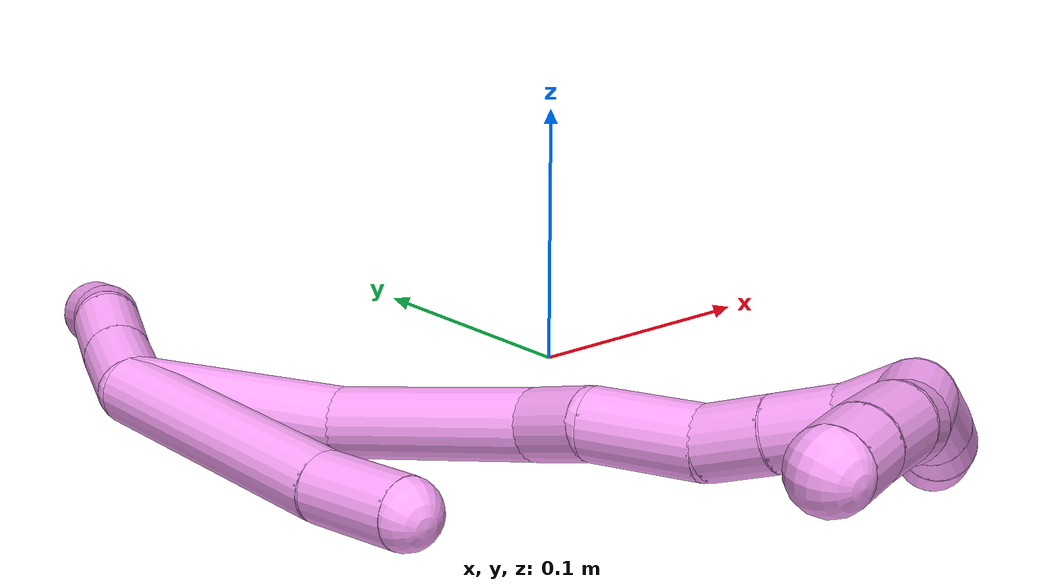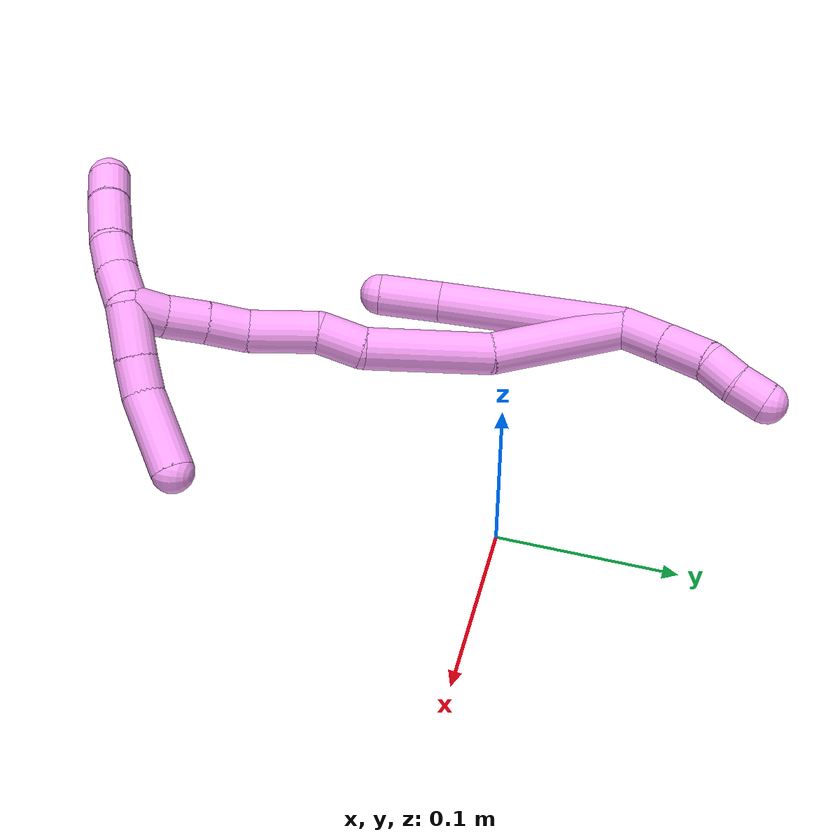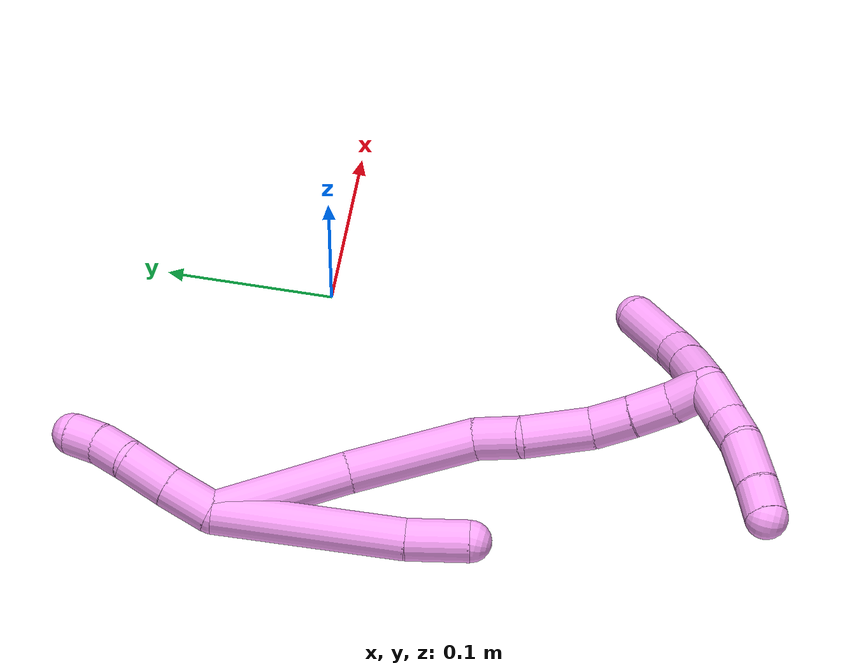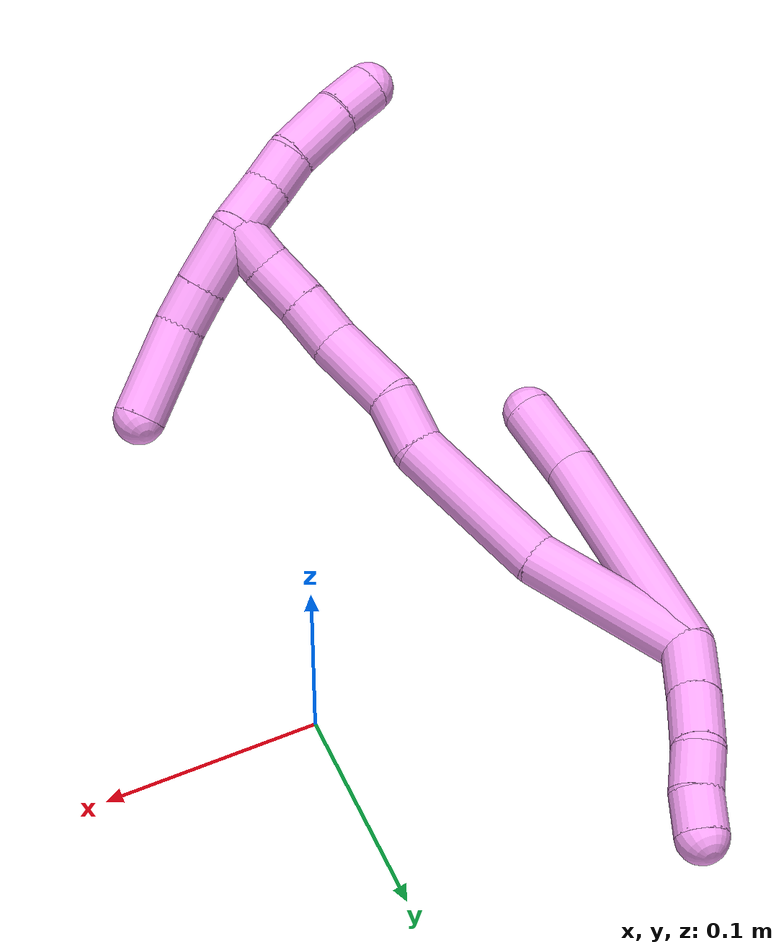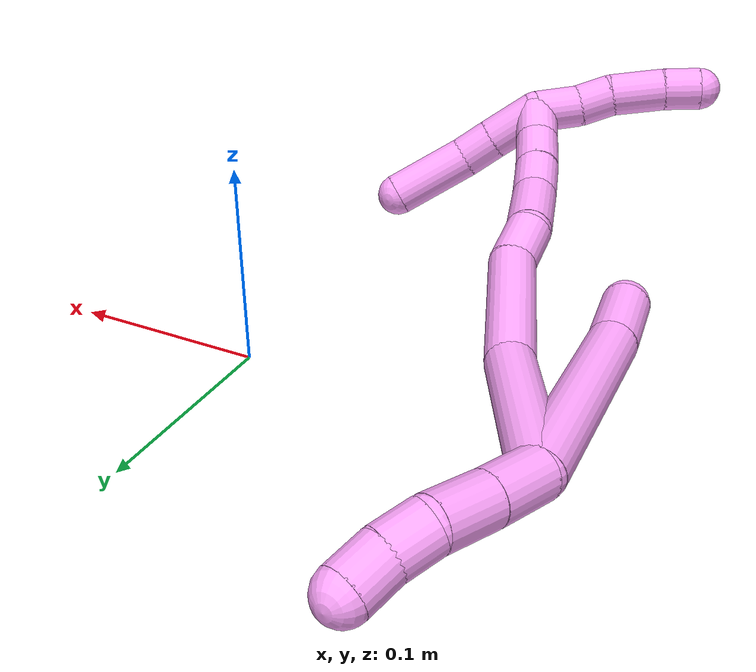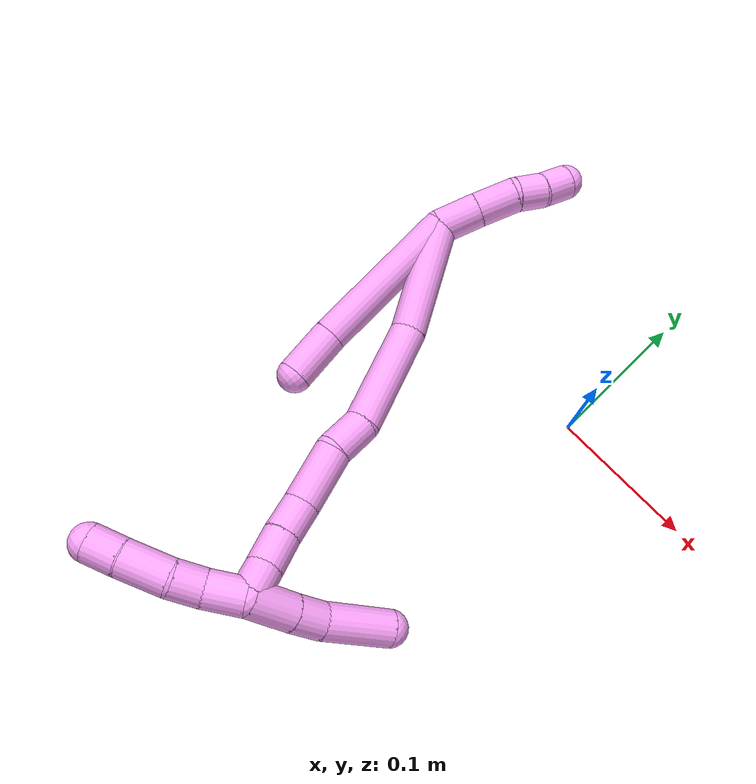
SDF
<sdf version="1.7">
 <world name="default">
  <model name="4">
   <static>0</static>
   <link name="4">
    <collision name="collision-cylinder-e_1_2_8">
     <pose>-0.006986 -0.000376 0.055879 0.006723 -0.124379 -0.000419</pose>
     <geometry><cylinder><radius>0.0125</radius><length>0.11263</length></cylinder></geometry>
     <surface>
      <friction><ode><mu>1.16</mu><mu2>1.16</mu2><slip1>0</slip1><slip2>0</slip2></ode></friction>
      <contact><ode><kp>1e+06</kp><kd>1</kd><max_vel>0</max_vel><min_depth>0.001</min_depth></ode></contact>
     </surface>
    </collision>
    <visual name="visual-cylinder-e_1_2_8">
     <pose>-0.006986 -0.000376 0.055879 0.006723 -0.124379 -0.000419</pose>
     <geometry><cylinder><radius>0.0125</radius><length>0.11263</length></cylinder></geometry>
     <material><ambient>1 0.65098 0.996078 1</ambient></material>
    </visual>
    <collision name="collision-cylinder-e_2_8_6">
     <pose>-0.018209 -0.001542 0.129939 0.043485 -0.22869 -0.004995</pose>
     <geometry><cylinder><radius>0.0125</radius><length>0.03737</length></cylinder></geometry>
     <surface>
      <friction><ode><mu>1.16</mu><mu2>1.16</mu2><slip1>0</slip1><slip2>0</slip2></ode></friction>
      <contact><ode><kp>1e+06</kp><kd>1</kd><max_vel>0</max_vel><min_depth>0.001</min_depth></ode></contact>
     </surface>
    </collision>
    <visual name="visual-cylinder-e_2_8_6">
     <pose>-0.018209 -0.001542 0.129939 0.043485 -0.22869 -0.004995</pose>
     <geometry><cylinder><radius>0.0125</radius><length>0.03737</length></cylinder></geometry>
     <material><ambient>1 0.65098 0.996078 1</ambient></material>
    </visual>
    <collision name="collision-cylinder-e_1_2_9">
     <pose>-0.004136 0.000894 -0.014383 -3.07951 -0.279508 2.70709</pose>
     <geometry><cylinder><radius>0.0125</radius><length>0.029986</length></cylinder></geometry>
     <surface>
      <friction><ode><mu>1.16</mu><mu2>1.16</mu2><slip1>0</slip1><slip2>0</slip2></ode></friction>
      <contact><ode><kp>1e+06</kp><kd>1</kd><max_vel>0</max_vel><min_depth>0.001</min_depth></ode></contact>
     </surface>
    </collision>
    <visual name="visual-cylinder-e_1_2_9">
     <pose>-0.004136 0.000894 -0.014383 -3.07951 -0.279508 2.70709</pose>
     <geometry><cylinder><radius>0.0125</radius><length>0.029986</length></cylinder></geometry>
     <material><ambient>1 0.65098 0.996078 1</ambient></material>
    </visual>
    <collision name="collision-cylinder-e_2_9_10">
     <pose>-0.012909 0.002575 -0.042544 -3.08455 -0.324148 2.79609</pose>
     <geometry><cylinder><radius>0.0125</radius><length>0.029116</length></cylinder></geometry>
     <surface>
      <friction><ode><mu>1.16</mu><mu2>1.16</mu2><slip1>0</slip1><slip2>0</slip2></ode></friction>
      <contact><ode><kp>1e+06</kp><kd>1</kd><max_vel>0</max_vel><min_depth>0.001</min_depth></ode></contact>
     </surface>
    </collision>
    <visual name="visual-cylinder-e_2_9_10">
     <pose>-0.012909 0.002575 -0.042544 -3.08455 -0.324148 2.79609</pose>
     <geometry><cylinder><radius>0.0125</radius><length>0.029116</length></cylinder></geometry>
     <material><ambient>1 0.65098 0.996078 1</ambient></material>
    </visual>
    <collision name="collision-cylinder-e_3_10_11">
     <pose>-0.02062 0.007219 -0.065371 -2.73863 -0.302853 1.28328</pose>
     <geometry><cylinder><radius>0.0125</radius><length>0.020612</length></cylinder></geometry>
     <surface>
      <friction><ode><mu>1.16</mu><mu2>1.16</mu2><slip1>0</slip1><slip2>0</slip2></ode></friction>
      <contact><ode><kp>1e+06</kp><kd>1</kd><max_vel>0</max_vel><min_depth>0.001</min_depth></ode></contact>
     </surface>
    </collision>
    <visual name="visual-cylinder-e_3_10_11">
     <pose>-0.02062 0.007219 -0.065371 -2.73863 -0.302853 1.28328</pose>
     <geometry><cylinder><radius>0.0125</radius><length>0.020612</length></cylinder></geometry>
     <material><ambient>1 0.65098 0.996078 1</ambient></material>
    </visual>
    <collision name="collision-cylinder-e_4_11_5">
     <pose>-0.024955 0.014562 -0.083862 -2.78803 -0.124688 0.672329</pose>
     <geometry><cylinder><radius>0.0125</radius><length>0.020286</length></cylinder></geometry>
     <surface>
      <friction><ode><mu>1.16</mu><mu2>1.16</mu2><slip1>0</slip1><slip2>0</slip2></ode></friction>
      <contact><ode><kp>1e+06</kp><kd>1</kd><max_vel>0</max_vel><min_depth>0.001</min_depth></ode></contact>
     </surface>
    </collision>
    <visual name="visual-cylinder-e_4_11_5">
     <pose>-0.024955 0.014562 -0.083862 -2.78803 -0.124688 0.672329</pose>
     <geometry><cylinder><radius>0.0125</radius><length>0.020286</length></cylinder></geometry>
     <material><ambient>1 0.65098 0.996078 1</ambient></material>
    </visual>
    <collision name="collision-cylinder-e_1_2_12">
     <pose>-0.022615 0.005812 0.034248 -0.16811 -0.577095 0.050008</pose>
     <geometry><cylinder><radius>0.0125</radius><length>0.082901</length></cylinder></geometry>
     <surface>
      <friction><ode><mu>1.16</mu><mu2>1.16</mu2><slip1>0</slip1><slip2>0</slip2></ode></friction>
      <contact><ode><kp>1e+06</kp><kd>1</kd><max_vel>0</max_vel><min_depth>0.001</min_depth></ode></contact>
     </surface>
    </collision>
    <visual name="visual-cylinder-e_1_2_12">
     <pose>-0.022615 0.005812 0.034248 -0.16811 -0.577095 0.050008</pose>
     <geometry><cylinder><radius>0.0125</radius><length>0.082901</length></cylinder></geometry>
     <material><ambient>1 0.65098 0.996078 1</ambient></material>
    </visual>
    <collision name="collision-cylinder-e_2_12_13">
     <pose>-0.063898 0.008515 0.101851 0.09296 -0.508383 -0.024168</pose>
     <geometry><cylinder><radius>0.0125</radius><length>0.076699</length></cylinder></geometry>
     <surface>
      <friction><ode><mu>1.16</mu><mu2>1.16</mu2><slip1>0</slip1><slip2>0</slip2></ode></friction>
      <contact><ode><kp>1e+06</kp><kd>1</kd><max_vel>0</max_vel><min_depth>0.001</min_depth></ode></contact>
     </surface>
    </collision>
    <visual name="visual-cylinder-e_2_12_13">
     <pose>-0.063898 0.008515 0.101851 0.09296 -0.508383 -0.024168</pose>
     <geometry><cylinder><radius>0.0125</radius><length>0.076699</length></cylinder></geometry>
     <material><ambient>1 0.65098 0.996078 1</ambient></material>
    </visual>
    <collision name="collision-cylinder-e_3_13_14">
     <pose>-0.085733 0.00143 0.148 0.301248 -0.232207 -0.035398</pose>
     <geometry><cylinder><radius>0.0125</radius><length>0.027534</length></cylinder></geometry>
     <surface>
      <friction><ode><mu>1.16</mu><mu2>1.16</mu2><slip1>0</slip1><slip2>0</slip2></ode></friction>
      <contact><ode><kp>1e+06</kp><kd>1</kd><max_vel>0</max_vel><min_depth>0.001</min_depth></ode></contact>
     </surface>
    </collision>
    <visual name="visual-cylinder-e_3_13_14">
     <pose>-0.085733 0.00143 0.148 0.301248 -0.232207 -0.035398</pose>
     <geometry><cylinder><radius>0.0125</radius><length>0.027534</length></cylinder></geometry>
     <material><ambient>1 0.65098 0.996078 1</ambient></material>
    </visual>
    <collision name="collision-cylinder-e_4_14_15">
     <pose>-0.096845 -0.002454 0.179832 -0.004763 -0.395291 0.000954</pose>
     <geometry><cylinder><radius>0.0125</radius><length>0.041257</length></cylinder></geometry>
     <surface>
      <friction><ode><mu>1.16</mu><mu2>1.16</mu2><slip1>0</slip1><slip2>0</slip2></ode></friction>
      <contact><ode><kp>1e+06</kp><kd>1</kd><max_vel>0</max_vel><min_depth>0.001</min_depth></ode></contact>
     </surface>
    </collision>
    <visual name="visual-cylinder-e_4_14_15">
     <pose>-0.096845 -0.002454 0.179832 -0.004763 -0.395291 0.000954</pose>
     <geometry><cylinder><radius>0.0125</radius><length>0.041257</length></cylinder></geometry>
     <material><ambient>1 0.65098 0.996078 1</ambient></material>
    </visual>
    <collision name="collision-cylinder-e_5_15_16">
     <pose>-0.110544 -0.005459 0.209316 0.288077 -0.486019 -0.071884</pose>
     <geometry><cylinder><radius>0.0125</radius><length>0.024646</length></cylinder></geometry>
     <surface>
      <friction><ode><mu>1.16</mu><mu2>1.16</mu2><slip1>0</slip1><slip2>0</slip2></ode></friction>
      <contact><ode><kp>1e+06</kp><kd>1</kd><max_vel>0</max_vel><min_depth>0.001</min_depth></ode></contact>
     </surface>
    </collision>
    <visual name="visual-cylinder-e_5_15_16">
     <pose>-0.110544 -0.005459 0.209316 0.288077 -0.486019 -0.071884</pose>
     <geometry><cylinder><radius>0.0125</radius><length>0.024646</length></cylinder></geometry>
     <material><ambient>1 0.65098 0.996078 1</ambient></material>
    </visual>
    <collision name="collision-cylinder-e_6_16_17">
     <pose>-0.122741 -0.011244 0.230021 0.256358 -0.545803 -0.072115</pose>
     <geometry><cylinder><radius>0.0125</radius><length>0.024815</length></cylinder></geometry>
     <surface>
      <friction><ode><mu>1.16</mu><mu2>1.16</mu2><slip1>0</slip1><slip2>0</slip2></ode></friction>
      <contact><ode><kp>1e+06</kp><kd>1</kd><max_vel>0</max_vel><min_depth>0.001</min_depth></ode></contact>
     </surface>
    </collision>
    <visual name="visual-cylinder-e_6_16_17">
     <pose>-0.122741 -0.011244 0.230021 0.256358 -0.545803 -0.072115</pose>
     <geometry><cylinder><radius>0.0125</radius><length>0.024815</length></cylinder></geometry>
     <material><ambient>1 0.65098 0.996078 1</ambient></material>
    </visual>
    <collision name="collision-cylinder-e_7_17_1">
     <pose>-0.135411 -0.018176 0.248393 0.481839 -0.597372 -0.151008</pose>
     <geometry><cylinder><radius>0.0125</radius><length>0.022148</length></cylinder></geometry>
     <surface>
      <friction><ode><mu>1.16</mu><mu2>1.16</mu2><slip1>0</slip1><slip2>0</slip2></ode></friction>
      <contact><ode><kp>1e+06</kp><kd>1</kd><max_vel>0</max_vel><min_depth>0.001</min_depth></ode></contact>
     </surface>
    </collision>
    <visual name="visual-cylinder-e_7_17_1">
     <pose>-0.135411 -0.018176 0.248393 0.481839 -0.597372 -0.151008</pose>
     <geometry><cylinder><radius>0.0125</radius><length>0.022148</length></cylinder></geometry>
     <material><ambient>1 0.65098 0.996078 1</ambient></material>
    </visual>
    <collision name="collision-cylinder-e_1_1_18">
     <pose>-0.14916 -0.010063 0.250144 -2.04637 -0.496013 0.787142</pose>
     <geometry><cylinder><radius>0.0125</radius><length>0.031604</length></cylinder></geometry>
     <surface>
      <friction><ode><mu>1.16</mu><mu2>1.16</mu2><slip1>0</slip1><slip2>0</slip2></ode></friction>
      <contact><ode><kp>1e+06</kp><kd>1</kd><max_vel>0</max_vel><min_depth>0.001</min_depth></ode></contact>
     </surface>
    </collision>
    <visual name="visual-cylinder-e_1_1_18">
     <pose>-0.14916 -0.010063 0.250144 -2.04637 -0.496013 0.787142</pose>
     <geometry><cylinder><radius>0.0125</radius><length>0.031604</length></cylinder></geometry>
     <material><ambient>1 0.65098 0.996078 1</ambient></material>
    </visual>
    <collision name="collision-cylinder-e_2_18_19">
     <pose>-0.16143 0.010522 0.239082 -2.08961 -0.464577 0.773868</pose>
     <geometry><cylinder><radius>0.0125</radius><length>0.021201</length></cylinder></geometry>
     <surface>
      <friction><ode><mu>1.16</mu><mu2>1.16</mu2><slip1>0</slip1><slip2>0</slip2></ode></friction>
      <contact><ode><kp>1e+06</kp><kd>1</kd><max_vel>0</max_vel><min_depth>0.001</min_depth></ode></contact>
     </surface>
    </collision>
    <visual name="visual-cylinder-e_2_18_19">
     <pose>-0.16143 0.010522 0.239082 -2.08961 -0.464577 0.773868</pose>
     <geometry><cylinder><radius>0.0125</radius><length>0.021201</length></cylinder></geometry>
     <material><ambient>1 0.65098 0.996078 1</ambient></material>
    </visual>
    <collision name="collision-cylinder-e_3_19_4">
     <pose>-0.176731 0.034415 0.220235 -2.30539 -0.463577 0.976661</pose>
     <geometry><cylinder><radius>0.0125</radius><length>0.047195</length></cylinder></geometry>
     <surface>
      <friction><ode><mu>1.16</mu><mu2>1.16</mu2><slip1>0</slip1><slip2>0</slip2></ode></friction>
      <contact><ode><kp>1e+06</kp><kd>1</kd><max_vel>0</max_vel><min_depth>0.001</min_depth></ode></contact>
     </surface>
    </collision>
    <visual name="visual-cylinder-e_3_19_4">
     <pose>-0.176731 0.034415 0.220235 -2.30539 -0.463577 0.976661</pose>
     <geometry><cylinder><radius>0.0125</radius><length>0.047195</length></cylinder></geometry>
     <material><ambient>1 0.65098 0.996078 1</ambient></material>
    </visual>
    <collision name="collision-cylinder-e_1_1_20">
     <pose>-0.132485 -0.027424 0.264684 0.549286 0.762304 0.22488</pose>
     <geometry><cylinder><radius>0.0125</radius><length>0.026513</length></cylinder></geometry>
     <surface>
      <friction><ode><mu>1.16</mu><mu2>1.16</mu2><slip1>0</slip1><slip2>0</slip2></ode></friction>
      <contact><ode><kp>1e+06</kp><kd>1</kd><max_vel>0</max_vel><min_depth>0.001</min_depth></ode></contact>
     </surface>
    </collision>
    <visual name="visual-cylinder-e_1_1_20">
     <pose>-0.132485 -0.027424 0.264684 0.549286 0.762304 0.22488</pose>
     <geometry><cylinder><radius>0.0125</radius><length>0.026513</length></cylinder></geometry>
     <material><ambient>1 0.65098 0.996078 1</ambient></material>
    </visual>
    <collision name="collision-cylinder-e_2_20_21">
     <pose>-0.116847 -0.038543 0.278133 0.859247 0.676675 0.319676</pose>
     <geometry><cylinder><radius>0.0125</radius><length>0.020707</length></cylinder></geometry>
     <surface>
      <friction><ode><mu>1.16</mu><mu2>1.16</mu2><slip1>0</slip1><slip2>0</slip2></ode></friction>
      <contact><ode><kp>1e+06</kp><kd>1</kd><max_vel>0</max_vel><min_depth>0.001</min_depth></ode></contact>
     </surface>
    </collision>
    <visual name="visual-cylinder-e_2_20_21">
     <pose>-0.116847 -0.038543 0.278133 0.859247 0.676675 0.319676</pose>
     <geometry><cylinder><radius>0.0125</radius><length>0.020707</length></cylinder></geometry>
     <material><ambient>1 0.65098 0.996078 1</ambient></material>
    </visual>
    <collision name="collision-cylinder-e_3_21_22">
     <pose>-0.098165 -0.051553 0.290593 0.76459 0.886003 0.377003</pose>
     <geometry><cylinder><radius>0.0125</radius><length>0.031498</length></cylinder></geometry>
     <surface>
      <friction><ode><mu>1.16</mu><mu2>1.16</mu2><slip1>0</slip1><slip2>0</slip2></ode></friction>
      <contact><ode><kp>1e+06</kp><kd>1</kd><max_vel>0</max_vel><min_depth>0.001</min_depth></ode></contact>
     </surface>
    </collision>
    <visual name="visual-cylinder-e_3_21_22">
     <pose>-0.098165 -0.051553 0.290593 0.76459 0.886003 0.377003</pose>
     <geometry><cylinder><radius>0.0125</radius><length>0.031498</length></cylinder></geometry>
     <material><ambient>1 0.65098 0.996078 1</ambient></material>
    </visual>
    <collision name="collision-cylinder-e_4_22_3">
     <pose>-0.07722 -0.062325 0.30244 0.694012 0.964868 0.374353</pose>
     <geometry><cylinder><radius>0.0125</radius><length>0.021282</length></cylinder></geometry>
     <surface>
      <friction><ode><mu>1.16</mu><mu2>1.16</mu2><slip1>0</slip1><slip2>0</slip2></ode></friction>
      <contact><ode><kp>1e+06</kp><kd>1</kd><max_vel>0</max_vel><min_depth>0.001</min_depth></ode></contact>
     </surface>
    </collision>
    <visual name="visual-cylinder-e_4_22_3">
     <pose>-0.07722 -0.062325 0.30244 0.694012 0.964868 0.374353</pose>
     <geometry><cylinder><radius>0.0125</radius><length>0.021282</length></cylinder></geometry>
     <material><ambient>1 0.65098 0.996078 1</ambient></material>
    </visual>
    <collision name="collision-sphere-3">
     <pose>-0.068473 -0.066201 0.307099 0 -0 0</pose>
     <geometry><sphere><radius>0.0125</radius></sphere></geometry>
     <surface>
      <friction><ode><mu>1.16</mu><mu2>1.16</mu2><slip1>0</slip1><slip2>0</slip2></ode></friction>
      <contact><ode><kp>1e+06</kp><kd>1</kd><max_vel>0</max_vel><min_depth>0.001</min_depth></ode></contact>
     </surface>
    </collision>
    <visual name="visual-sphere-3">
     <pose>-0.068473 -0.066201 0.307099 0 -0 0</pose>
     <geometry><sphere><radius>0.0125</radius></sphere></geometry>
     <material><ambient>1 0.65098 0.996078 1</ambient></material>
    </visual>
    <collision name="collision-sphere-22">
     <pose>-0.085966 -0.058448 0.297782 0 -0 0</pose>
     <geometry><sphere><radius>0.0125</radius></sphere></geometry>
     <surface>
      <friction><ode><mu>1.16</mu><mu2>1.16</mu2><slip1>0</slip1><slip2>0</slip2></ode></friction>
      <contact><ode><kp>1e+06</kp><kd>1</kd><max_vel>0</max_vel><min_depth>0.001</min_depth></ode></contact>
     </surface>
    </collision>
    <visual name="visual-sphere-22">
     <pose>-0.085966 -0.058448 0.297782 0 -0 0</pose>
     <geometry><sphere><radius>0.0125</radius></sphere></geometry>
     <material><ambient>1 0.65098 0.996078 1</ambient></material>
    </visual>
    <collision name="collision-sphere-21">
     <pose>-0.110363 -0.044657 0.283404 0 -0 0</pose>
     <geometry><sphere><radius>0.0125</radius></sphere></geometry>
     <surface>
      <friction><ode><mu>1.16</mu><mu2>1.16</mu2><slip1>0</slip1><slip2>0</slip2></ode></friction>
      <contact><ode><kp>1e+06</kp><kd>1</kd><max_vel>0</max_vel><min_depth>0.001</min_depth></ode></contact>
     </surface>
    </collision>
    <visual name="visual-sphere-21">
     <pose>-0.110363 -0.044657 0.283404 0 -0 0</pose>
     <geometry><sphere><radius>0.0125</radius></sphere></geometry>
     <material><ambient>1 0.65098 0.996078 1</ambient></material>
    </visual>
    <collision name="collision-sphere-20">
     <pose>-0.12333 -0.03243 0.272861 0 -0 0</pose>
     <geometry><sphere><radius>0.0125</radius></sphere></geometry>
     <surface>
      <friction><ode><mu>1.16</mu><mu2>1.16</mu2><slip1>0</slip1><slip2>0</slip2></ode></friction>
      <contact><ode><kp>1e+06</kp><kd>1</kd><max_vel>0</max_vel><min_depth>0.001</min_depth></ode></contact>
     </surface>
    </collision>
    <visual name="visual-sphere-20">
     <pose>-0.12333 -0.03243 0.272861 0 -0 0</pose>
     <geometry><sphere><radius>0.0125</radius></sphere></geometry>
     <material><ambient>1 0.65098 0.996078 1</ambient></material>
    </visual>
    <collision name="collision-sphere-4">
     <pose>-0.187283 0.050079 0.206087 0 -0 0</pose>
     <geometry><sphere><radius>0.0125</radius></sphere></geometry>
     <surface>
      <friction><ode><mu>1.16</mu><mu2>1.16</mu2><slip1>0</slip1><slip2>0</slip2></ode></friction>
      <contact><ode><kp>1e+06</kp><kd>1</kd><max_vel>0</max_vel><min_depth>0.001</min_depth></ode></contact>
     </surface>
    </collision>
    <visual name="visual-sphere-4">
     <pose>-0.187283 0.050079 0.206087 0 -0 0</pose>
     <geometry><sphere><radius>0.0125</radius></sphere></geometry>
     <material><ambient>1 0.65098 0.996078 1</ambient></material>
    </visual>
    <collision name="collision-sphere-11">
     <pose>-0.023694 0.011077 -0.07442 0 -0 0</pose>
     <geometry><sphere><radius>0.0125</radius></sphere></geometry>
     <surface>
      <friction><ode><mu>1.16</mu><mu2>1.16</mu2><slip1>0</slip1><slip2>0</slip2></ode></friction>
      <contact><ode><kp>1e+06</kp><kd>1</kd><max_vel>0</max_vel><min_depth>0.001</min_depth></ode></contact>
     </surface>
    </collision>
    <visual name="visual-sphere-11">
     <pose>-0.023694 0.011077 -0.07442 0 -0 0</pose>
     <geometry><sphere><radius>0.0125</radius></sphere></geometry>
     <material><ambient>1 0.65098 0.996078 1</ambient></material>
    </visual>
    <collision name="collision-sphere-10">
     <pose>-0.017546 0.003362 -0.056322 0 -0 0</pose>
     <geometry><sphere><radius>0.0125</radius></sphere></geometry>
     <surface>
      <friction><ode><mu>1.16</mu><mu2>1.16</mu2><slip1>0</slip1><slip2>0</slip2></ode></friction>
      <contact><ode><kp>1e+06</kp><kd>1</kd><max_vel>0</max_vel><min_depth>0.001</min_depth></ode></contact>
     </surface>
    </collision>
    <visual name="visual-sphere-10">
     <pose>-0.017546 0.003362 -0.056322 0 -0 0</pose>
     <geometry><sphere><radius>0.0125</radius></sphere></geometry>
     <material><ambient>1 0.65098 0.996078 1</ambient></material>
    </visual>
    <collision name="collision-sphere-6">
     <pose>-0.022445 -0.002334 0.14812 0 -0 0</pose>
     <geometry><sphere><radius>0.0125</radius></sphere></geometry>
     <surface>
      <friction><ode><mu>1.16</mu><mu2>1.16</mu2><slip1>0</slip1><slip2>0</slip2></ode></friction>
      <contact><ode><kp>1e+06</kp><kd>1</kd><max_vel>0</max_vel><min_depth>0.001</min_depth></ode></contact>
     </surface>
    </collision>
    <visual name="visual-sphere-6">
     <pose>-0.022445 -0.002334 0.14812 0 -0 0</pose>
     <geometry><sphere><radius>0.0125</radius></sphere></geometry>
     <material><ambient>1 0.65098 0.996078 1</ambient></material>
    </visual>
    <collision name="collision-sphere-9">
     <pose>-0.008273 0.001788 -0.028767 0 -0 0</pose>
     <geometry><sphere><radius>0.0125</radius></sphere></geometry>
     <surface>
      <friction><ode><mu>1.16</mu><mu2>1.16</mu2><slip1>0</slip1><slip2>0</slip2></ode></friction>
      <contact><ode><kp>1e+06</kp><kd>1</kd><max_vel>0</max_vel><min_depth>0.001</min_depth></ode></contact>
     </surface>
    </collision>
    <visual name="visual-sphere-9">
     <pose>-0.008273 0.001788 -0.028767 0 -0 0</pose>
     <geometry><sphere><radius>0.0125</radius></sphere></geometry>
     <material><ambient>1 0.65098 0.996078 1</ambient></material>
    </visual>
    <collision name="collision-sphere-2">
     <geometry><sphere><radius>0.0125</radius></sphere></geometry>
     <surface>
      <friction><ode><mu>1.16</mu><mu2>1.16</mu2><slip1>0</slip1><slip2>0</slip2></ode></friction>
      <contact><ode><kp>1e+06</kp><kd>1</kd><max_vel>0</max_vel><min_depth>0.001</min_depth></ode></contact>
     </surface>
    </collision>
    <visual name="visual-sphere-2">
     <geometry><sphere><radius>0.0125</radius></sphere></geometry>
     <material><ambient>1 0.65098 0.996078 1</ambient></material>
    </visual>
    <collision name="collision-sphere-19">
     <pose>-0.16618 0.018752 0.234382 0 -0 0</pose>
     <geometry><sphere><radius>0.0125</radius></sphere></geometry>
     <surface>
      <friction><ode><mu>1.16</mu><mu2>1.16</mu2><slip1>0</slip1><slip2>0</slip2></ode></friction>
      <contact><ode><kp>1e+06</kp><kd>1</kd><max_vel>0</max_vel><min_depth>0.001</min_depth></ode></contact>
     </surface>
    </collision>
    <visual name="visual-sphere-19">
     <pose>-0.16618 0.018752 0.234382 0 -0 0</pose>
     <geometry><sphere><radius>0.0125</radius></sphere></geometry>
     <material><ambient>1 0.65098 0.996078 1</ambient></material>
    </visual>
    <collision name="collision-sphere-8">
     <pose>-0.013973 -0.000751 0.111757 0 -0 0</pose>
     <geometry><sphere><radius>0.0125</radius></sphere></geometry>
     <surface>
      <friction><ode><mu>1.16</mu><mu2>1.16</mu2><slip1>0</slip1><slip2>0</slip2></ode></friction>
      <contact><ode><kp>1e+06</kp><kd>1</kd><max_vel>0</max_vel><min_depth>0.001</min_depth></ode></contact>
     </surface>
    </collision>
    <visual name="visual-sphere-8">
     <pose>-0.013973 -0.000751 0.111757 0 -0 0</pose>
     <geometry><sphere><radius>0.0125</radius></sphere></geometry>
     <material><ambient>1 0.65098 0.996078 1</ambient></material>
    </visual>
    <collision name="collision-sphere-5">
     <pose>-0.026216 0.018046 -0.093303 0 -0 0</pose>
     <geometry><sphere><radius>0.0125</radius></sphere></geometry>
     <surface>
      <friction><ode><mu>1.16</mu><mu2>1.16</mu2><slip1>0</slip1><slip2>0</slip2></ode></friction>
      <contact><ode><kp>1e+06</kp><kd>1</kd><max_vel>0</max_vel><min_depth>0.001</min_depth></ode></contact>
     </surface>
    </collision>
    <visual name="visual-sphere-5">
     <pose>-0.026216 0.018046 -0.093303 0 -0 0</pose>
     <geometry><sphere><radius>0.0125</radius></sphere></geometry>
     <material><ambient>1 0.65098 0.996078 1</ambient></material>
    </visual>
    <collision name="collision-sphere-12">
     <pose>-0.04523 0.011625 0.068496 0 -0 0</pose>
     <geometry><sphere><radius>0.0125</radius></sphere></geometry>
     <surface>
      <friction><ode><mu>1.16</mu><mu2>1.16</mu2><slip1>0</slip1><slip2>0</slip2></ode></friction>
      <contact><ode><kp>1e+06</kp><kd>1</kd><max_vel>0</max_vel><min_depth>0.001</min_depth></ode></contact>
     </surface>
    </collision>
    <visual name="visual-sphere-12">
     <pose>-0.04523 0.011625 0.068496 0 -0 0</pose>
     <geometry><sphere><radius>0.0125</radius></sphere></geometry>
     <material><ambient>1 0.65098 0.996078 1</ambient></material>
    </visual>
    <collision name="collision-sphere-13">
     <pose>-0.082565 0.005405 0.135206 0 -0 0</pose>
     <geometry><sphere><radius>0.0125</radius></sphere></geometry>
     <surface>
      <friction><ode><mu>1.16</mu><mu2>1.16</mu2><slip1>0</slip1><slip2>0</slip2></ode></friction>
      <contact><ode><kp>1e+06</kp><kd>1</kd><max_vel>0</max_vel><min_depth>0.001</min_depth></ode></contact>
     </surface>
    </collision>
    <visual name="visual-sphere-13">
     <pose>-0.082565 0.005405 0.135206 0 -0 0</pose>
     <geometry><sphere><radius>0.0125</radius></sphere></geometry>
     <material><ambient>1 0.65098 0.996078 1</ambient></material>
    </visual>
    <collision name="collision-sphere-14">
     <pose>-0.088901 -0.002545 0.160794 0 -0 0</pose>
     <geometry><sphere><radius>0.0125</radius></sphere></geometry>
     <surface>
      <friction><ode><mu>1.16</mu><mu2>1.16</mu2><slip1>0</slip1><slip2>0</slip2></ode></friction>
      <contact><ode><kp>1e+06</kp><kd>1</kd><max_vel>0</max_vel><min_depth>0.001</min_depth></ode></contact>
     </surface>
    </collision>
    <visual name="visual-sphere-14">
     <pose>-0.088901 -0.002545 0.160794 0 -0 0</pose>
     <geometry><sphere><radius>0.0125</radius></sphere></geometry>
     <material><ambient>1 0.65098 0.996078 1</ambient></material>
    </visual>
    <collision name="collision-sphere-15">
     <pose>-0.104788 -0.002364 0.198869 0 -0 0</pose>
     <geometry><sphere><radius>0.0125</radius></sphere></geometry>
     <surface>
      <friction><ode><mu>1.16</mu><mu2>1.16</mu2><slip1>0</slip1><slip2>0</slip2></ode></friction>
      <contact><ode><kp>1e+06</kp><kd>1</kd><max_vel>0</max_vel><min_depth>0.001</min_depth></ode></contact>
     </surface>
    </collision>
    <visual name="visual-sphere-15">
     <pose>-0.104788 -0.002364 0.198869 0 -0 0</pose>
     <geometry><sphere><radius>0.0125</radius></sphere></geometry>
     <material><ambient>1 0.65098 0.996078 1</ambient></material>
    </visual>
    <collision name="collision-sphere-16">
     <pose>-0.1163 -0.008555 0.219763 0 -0 0</pose>
     <geometry><sphere><radius>0.0125</radius></sphere></geometry>
     <surface>
      <friction><ode><mu>1.16</mu><mu2>1.16</mu2><slip1>0</slip1><slip2>0</slip2></ode></friction>
      <contact><ode><kp>1e+06</kp><kd>1</kd><max_vel>0</max_vel><min_depth>0.001</min_depth></ode></contact>
     </surface>
    </collision>
    <visual name="visual-sphere-16">
     <pose>-0.1163 -0.008555 0.219763 0 -0 0</pose>
     <geometry><sphere><radius>0.0125</radius></sphere></geometry>
     <material><ambient>1 0.65098 0.996078 1</ambient></material>
    </visual>
    <collision name="collision-sphere-17">
     <pose>-0.129182 -0.013933 0.24028 0 -0 0</pose>
     <geometry><sphere><radius>0.0125</radius></sphere></geometry>
     <surface>
      <friction><ode><mu>1.16</mu><mu2>1.16</mu2><slip1>0</slip1><slip2>0</slip2></ode></friction>
      <contact><ode><kp>1e+06</kp><kd>1</kd><max_vel>0</max_vel><min_depth>0.001</min_depth></ode></contact>
     </surface>
    </collision>
    <visual name="visual-sphere-17">
     <pose>-0.129182 -0.013933 0.24028 0 -0 0</pose>
     <geometry><sphere><radius>0.0125</radius></sphere></geometry>
     <material><ambient>1 0.65098 0.996078 1</ambient></material>
    </visual>
    <collision name="collision-sphere-1">
     <pose>-0.14164 -0.022419 0.256507 0 -0 0</pose>
     <geometry><sphere><radius>0.0125</radius></sphere></geometry>
     <surface>
      <friction><ode><mu>1.16</mu><mu2>1.16</mu2><slip1>0</slip1><slip2>0</slip2></ode></friction>
      <contact><ode><kp>1e+06</kp><kd>1</kd><max_vel>0</max_vel><min_depth>0.001</min_depth></ode></contact>
     </surface>
    </collision>
    <visual name="visual-sphere-1">
     <pose>-0.14164 -0.022419 0.256507 0 -0 0</pose>
     <geometry><sphere><radius>0.0125</radius></sphere></geometry>
     <material><ambient>1 0.65098 0.996078 1</ambient></material>
    </visual>
    <collision name="collision-sphere-18">
     <pose>-0.156681 0.002292 0.243781 0 -0 0</pose>
     <geometry><sphere><radius>0.0125</radius></sphere></geometry>
     <surface>
      <friction><ode><mu>1.16</mu><mu2>1.16</mu2><slip1>0</slip1><slip2>0</slip2></ode></friction>
      <contact><ode><kp>1e+06</kp><kd>1</kd><max_vel>0</max_vel><min_depth>0.001</min_depth></ode></contact>
     </surface>
    </collision>
    <visual name="visual-sphere-18">
     <pose>-0.156681 0.002292 0.243781 0 -0 0</pose>
     <geometry><sphere><radius>0.0125</radius></sphere></geometry>
     <material><ambient>1 0.65098 0.996078 1</ambient></material>
    </visual>
    <inertial>
     <pose>-0.069259 -0.002991 0.128906 0 -0 0</pose>
     <mass>0.75</mass>
     <inertia>
      <ixx>0.000238</ixx>
      <ixy>0</ixy>
      <ixz>0</ixz>
      <iyy>0.000268</iyy>
      <iyz>0</iyz>
      <izz>8.9e-05</izz>
     </inertia>
    </inertial>
   </link>
   <pose>-0.165077 0.038604 0.014464 -1.64798 0.327519 3.03525</pose>
  </model>
 </world>
</sdf>
